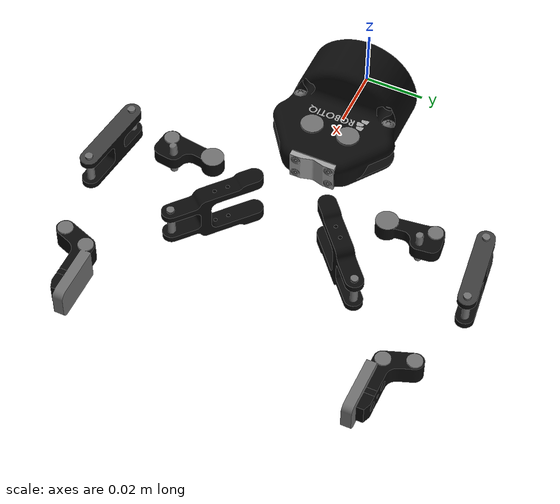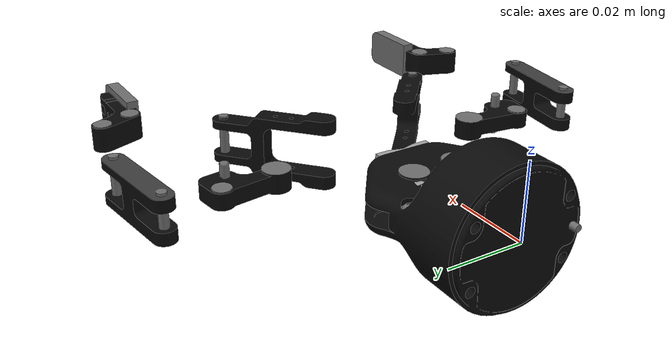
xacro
<?xml version="1.0" ?>

<robot name="robotiq_85_gripper" xmlns:xacro="http://ros.org/wiki/xacro">
    <xacro:include filename="$(find robotiq_85_description)/urdf/robotiq_85_gripper.urdf.xacro" />

    <link name="gripper_root_link"/>

    <xacro:robotiq_85_gripper prefix="" parent="gripper_root_link">
        <origin xyz="0 0 0" rpy="0 0 0"/>
    </xacro:robotiq_85_gripper>

</robot>

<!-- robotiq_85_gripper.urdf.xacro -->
<robot name="robotiq_85_gripper" xmlns:xacro="http://ros.org/wiki/xacro">
    <xacro:include filename="$(find robotiq_85_description)/urdf/robotiq_85_gripper.transmission.xacro" />
    <xacro:property name="pi" value="3.14159"/>

    <xacro:macro name="robotiq_85_gripper" params="prefix parent *origin">

        <joint name="${prefix}robotiq_85_base_joint" type="fixed">
            <parent link="${parent}"/>
            <child link="${prefix}robotiq_85_base_link"/>
            <xacro:insert_block name="origin"/>
        </joint>

        <link name="${prefix}robotiq_85_base_link">
            <visual>
                <geometry>
                    <mesh filename="package://robotiq_85_description/meshes/visual/robotiq_85_base_link.dae"/>
                </geometry>
            </visual>
            <collision>
                <geometry>
                    <mesh filename="package://robotiq_85_description/meshes/collision/robotiq_85_base_link.stl"/>
                </geometry>
            </collision>
            <inertial>
                <mass value="0.636951" />
                <origin xyz="0.0 0.0 0.0" />
                <inertia ixx = "0.000380" ixy = "0.000000" ixz = "0.000000"
                         iyx = "0.000000" iyy = "0.001110" iyz = "0.000000"
                         izx = "0.000000" izy = "0.000000" izz = "0.001171" />
            </inertial>
        </link>

        <joint name="${prefix}robotiq_85_left_knuckle_joint" type="revolute">
            <parent link="${prefix}robotiq_85_base_link"/>
            <child link="${prefix}robotiq_85_left_knuckle_link"/>
            <axis xyz="0 0 1"/>
            <origin rpy="${pi} 0.0 0.0" xyz="0.05490451627 0.03060114443 0.0"/>
            <limit lower="0.0" upper="0.804" velocity="2.0" effort="1000"/>
        </joint>

        <joint name="${prefix}robotiq_85_right_knuckle_joint" type="continuous">
            <parent link="${prefix}robotiq_85_base_link"/>
            <child link="${prefix}robotiq_85_right_knuckle_link"/>
            <axis xyz="0 0 1"/>
            <origin rpy="0.0 0.0 0.0" xyz="0.05490451627 -0.03060114443 0.0"/>
            <limit lower="-3.14" upper="3.14" velocity="100.0" effort="1000"/>
            <mimic joint="${prefix}robotiq_85_left_knuckle_joint"/>
        </joint>

        <link name="${prefix}robotiq_85_left_knuckle_link">
            <visual>
                <geometry>
                    <mesh filename="package://robotiq_85_description/meshes/visual/robotiq_85_knuckle_link.dae"/>
                </geometry>
            </visual>
            <collision>
                <geometry>
                    <mesh filename="package://robotiq_85_description/meshes/collision/robotiq_85_knuckle_link.stl"/>
                </geometry>
            </collision>
            <inertial>
                <mass value="0.018491" />
                <origin xyz="0.0 0.0 0.0" />
                <inertia ixx = "0.000009" ixy = "-0.000001" ixz = "0.000000"
                         iyx = "-0.000001" iyy = "0.000001" iyz = "0.000000"
                         izx = "0.000000" izy = "0.000000" izz = "0.000010" />
            </inertial>
        </link>

        <link name="${prefix}robotiq_85_right_knuckle_link">
            <visual>
                <geometry>
                    <mesh filename="package://robotiq_85_description/meshes/visual/robotiq_85_knuckle_link.dae"/>
                </geometry>
            </visual>
            <collision>
                <geometry>
                    <mesh filename="package://robotiq_85_description/meshes/collision/robotiq_85_knuckle_link.stl"/>
                </geometry>
            </collision>
            <inertial>
                <mass value="0.018491" />
                <origin xyz="0.0 0.0 0.0" />
                <inertia ixx = "0.000009" ixy = "-0.000001" ixz = "0.000000"
                         iyx = "-0.000001" iyy = "0.000001" iyz = "0.000000"
                         izx = "0.000000" izy = "0.000000" izz = "0.000010" />
            </inertial>
        </link>

        <joint name="${prefix}robotiq_85_left_finger_joint" type="continuous">
            <parent link="${prefix}robotiq_85_left_knuckle_link"/>
            <child link="${prefix}robotiq_85_left_finger_link"/>
            <origin xyz="-0.00408552455 -0.03148604435 0.0" rpy="0 0 0" />
        </joint>

        <joint name="${prefix}robotiq_85_right_finger_joint" type="continuous">
            <parent link="${prefix}robotiq_85_right_knuckle_link"/>
            <child link="${prefix}robotiq_85_right_finger_link"/>
            <origin xyz="-0.00408552455 -0.03148604435 0.0" rpy="0 0 0" />
        </joint>

        <link name="${prefix}robotiq_85_left_finger_link">
            <visual>
                <geometry>
                    <mesh filename="package://robotiq_85_description/meshes/visual/robotiq_85_finger_link.dae"/>
                </geometry>
            </visual>
            <collision>
                <geometry>
                    <mesh filename="package://robotiq_85_description/meshes/collision/robotiq_85_finger_link.stl"/>
                </geometry>
            </collision>
            <inertial>
                <mass value="0.027309" />
                <origin xyz="0.0 0.0 0.0" />
                <inertia ixx = "0.000003" ixy = "-0.000002" ixz = "0.000000"
                         iyx = "-0.000002" iyy = "0.000021" iyz = "0.000000"
                         izx = "0.000000" izy = "0.000000" izz = "0.000020" />
            </inertial>
        </link>

        <link name="${prefix}robotiq_85_right_finger_link">
            <visual>
                <geometry>
                    <mesh filename="package://robotiq_85_description/meshes/visual/robotiq_85_finger_link.dae"/>
                </geometry>
            </visual>
            <collision>
                <geometry>
                    <mesh filename="package://robotiq_85_description/meshes/collision/robotiq_85_finger_link.stl"/>
                </geometry>
            </collision>
            <inertial>
                <mass value="0.027309" />
                <origin xyz="0.0 0.0 0.0" />
                <inertia ixx = "0.000003" ixy = "-0.000002" ixz = "0.000000"
                         iyx = "-0.000002" iyy = "0.000021" iyz = "0.000000"
                         izx = "0.000000" izy = "0.000000" izz = "0.000020" />
            </inertial>
        </link>

        <joint name="${prefix}robotiq_85_left_inner_knuckle_joint" type="continuous">
            <parent link="${prefix}robotiq_85_base_link"/>
            <child link="${prefix}robotiq_85_left_inner_knuckle_link"/>
            <axis xyz="0 0 1"/>
            <origin xyz="0.06142 0.0127 0" rpy="${pi} 0.0 0.0" />
            <limit lower="-3.14" upper="3.14" velocity="100.0" effort="0.1"/>
            <mimic joint="${prefix}robotiq_85_left_knuckle_joint" offset="0"/>
        </joint>

        <joint name="${prefix}robotiq_85_right_inner_knuckle_joint" type="continuous">
            <parent link="${prefix}robotiq_85_base_link"/>
            <child link="${prefix}robotiq_85_right_inner_knuckle_link"/>
            <axis xyz="0 0 1"/>
            <origin xyz="0.06142 -0.0127 0" rpy="0 0 0"/>
            <limit lower="-3.14" upper="3.14" velocity="100.0" effort="0.1"/>
            <mimic joint="${prefix}robotiq_85_left_knuckle_joint" offset="0"/>
        </joint>

        <link name="${prefix}robotiq_85_left_inner_knuckle_link">
            <visual>
                <geometry>
                    <mesh filename="package://robotiq_85_description/meshes/visual/robotiq_85_inner_knuckle_link.dae"/>
                </geometry>
            </visual>
            <collision>
                <geometry>
                    <mesh filename="package://robotiq_85_description/meshes/collision/robotiq_85_inner_knuckle_link.stl"/>
                </geometry>
            </collision>
            <inertial>
                <mass value="0.029951" />
                <origin xyz="0.0 0.0 0.0" />
                <inertia ixx = "0.000039" ixy = "0.000000" ixz = "0.000000"
                         iyx = "0.000000" iyy = "0.000005" iyz = "0.000000"
                         izx = "0.000000" izy = "0.000000" izz = "0.000035" />
            </inertial>
        </link>
        <link name="${prefix}robotiq_85_right_inner_knuckle_link">
            <visual>
                <geometry>
                    <mesh filename="package://robotiq_85_description/meshes/visual/robotiq_85_inner_knuckle_link.dae"/>
                </geometry>
            </visual>
            <collision>
                <geometry>
                    <mesh filename="package://robotiq_85_description/meshes/collision/robotiq_85_inner_knuckle_link.stl"/>
                </geometry>
            </collision>
            <inertial>
                <mass value="0.029951" />
                <origin xyz="0.0 0.0 0.0" />
                <inertia ixx = "0.000039" ixy = "0.000000" ixz = "0.000000"
                         iyx = "0.000000" iyy = "0.000005" iyz = "0.000000"
                         izx = "0.000000" izy = "0.000000" izz = "0.000035" />
            </inertial>
        </link>

        <joint name="${prefix}robotiq_85_left_finger_tip_joint" type="continuous">
            <parent link="${prefix}robotiq_85_left_inner_knuckle_link"/>
            <child link="${prefix}robotiq_85_left_finger_tip_link"/>
            <axis xyz="0 0 1"/>
            <origin xyz="0.04303959807 -0.03759940821 0.0" rpy="0.0 0.0 0.0"/>
            <limit lower="-3.14" upper="3.14" velocity="100.0" effort="0.1"/>
            <mimic joint="${prefix}robotiq_85_left_knuckle_joint" multiplier="-1"/>
        </joint>

        <joint name="${prefix}robotiq_85_right_finger_tip_joint" type="continuous">
            <parent link="${prefix}robotiq_85_right_inner_knuckle_link"/>
            <child link="${prefix}robotiq_85_right_finger_tip_link"/>
            <axis xyz="0 0 1"/>
            <origin rpy="0.0 0.0 0.0" xyz="0.04303959807 -0.03759940821  0.0"/>
            <limit lower="-3.14" upper="3.14" velocity="100.0" effort="0.1"/>
            <mimic joint="${prefix}robotiq_85_left_knuckle_joint" multiplier="-1"/>
        </joint>

        <link name="${prefix}robotiq_85_left_finger_tip_link">
            <visual>
                <geometry>
                    <mesh filename="package://robotiq_85_description/meshes/visual/robotiq_85_finger_tip_link.dae"/>
                </geometry>
            </visual>
            <collision>
                <geometry>
                    <mesh filename="package://robotiq_85_description/meshes/collision/robotiq_85_finger_tip_link.stl"/>
                </geometry>
            </collision>
            <inertial>
                <mass value="0.019555" />
                <origin xyz="0.0 0.0 0.0" />
                <inertia ixx = "0.000002" ixy = "0.000000" ixz = "0.000000"
                         iyx = "0.000000" iyy = "0.000005" iyz = "0.000000"
                         izx = "0.000000" izy = "0.000000" izz = "0.000006" />
            </inertial>
        </link>

        <link name="${prefix}robotiq_85_right_finger_tip_link">
            <visual>
                <geometry>
                    <mesh filename="package://robotiq_85_description/meshes/visual/robotiq_85_finger_tip_link.dae"/>
                </geometry>
            </visual>
            <collision>
                <geometry>
                    <mesh filename="package://robotiq_85_description/meshes/collision/robotiq_85_finger_tip_link.stl"/>
                </geometry>
            </collision>
            <inertial>
                <mass value="0.019555" />
                <origin xyz="0.0 0.0 0.0" />
                <inertia ixx = "0.000002" ixy = "0.000000" ixz = "0.000000"
                         iyx = "0.000000" iyy = "0.000005" iyz = "0.000000"
                         izx = "0.000000" izy = "0.000000" izz = "0.000006" />
            </inertial>
        </link>

        <xacro:robotiq_85_gripper_transmission prefix="${prefix}" />

    </xacro:macro>
</robot>
